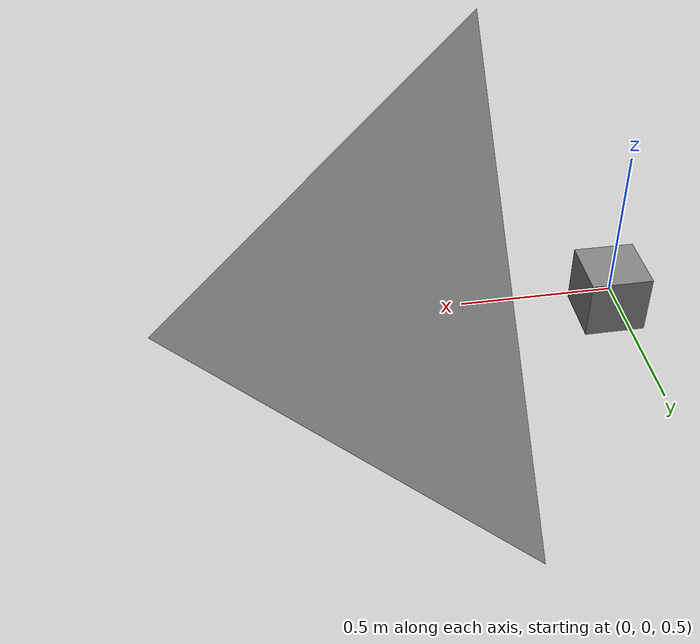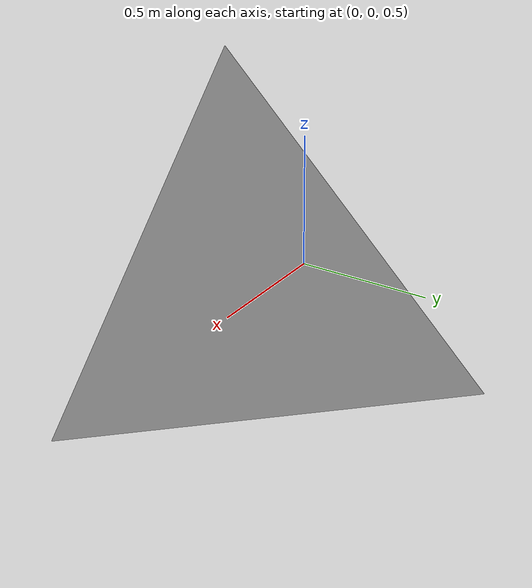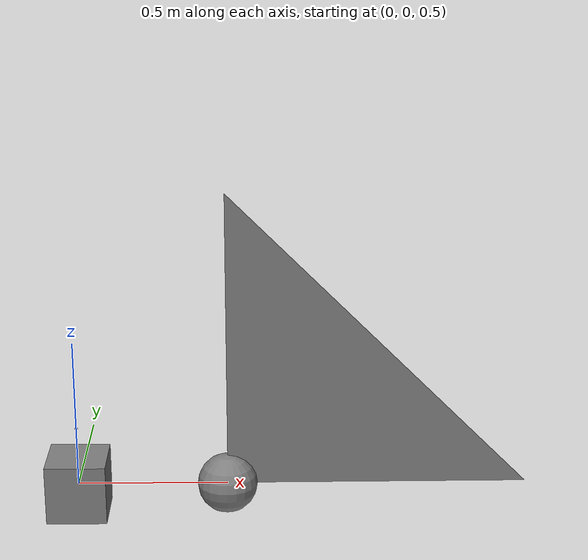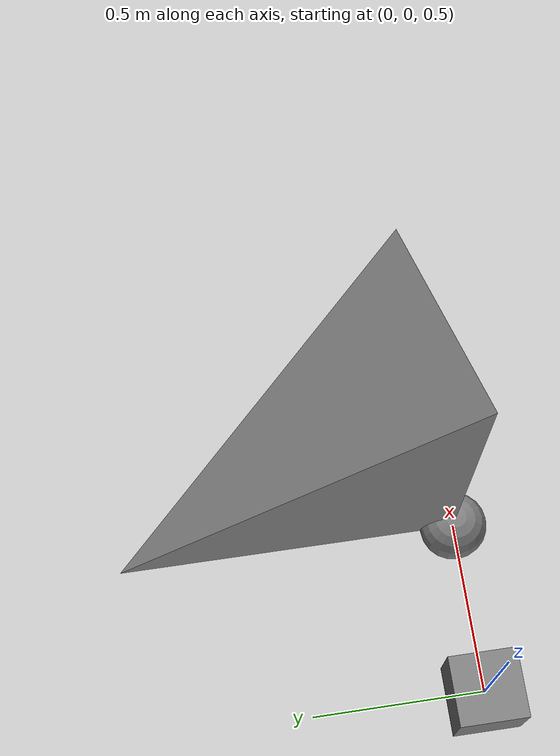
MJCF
<mujoco model="exotic_sensors">
  <asset>
    <mesh name="tetra" vertex="0 0 0  1 0 0  0 1 0  0 0 1"/>
  </asset>
  <worldbody>
    <body name="b1" pos="0 0 0.5">
      <freejoint/>
      <geom name="g1" type="box" size="0.1 0.1 0.1"/>
      <site name="s1" pos="0 0 0.2"/>
      <camera name="cam1" pos="0 0 0.3" resolution="4 4"/>
    </body>
    <body name="b2" pos="0.5 0 0.5">
      <freejoint/>
      <geom name="g2" type="sphere" size="0.1"/>
      <geom name="gmesh" type="mesh" mesh="tetra"/>
    </body>
  </worldbody>
  <sensor>
    <rangefinder name="rf_site" site="s1"/>
    <rangefinder name="rf_data" site="s1" data="dist normal" cutoff="5"/>
    <rangefinder name="rf_cam" camera="cam1"/>
    <contact name="ct_min" geom1="g1" geom2="g2" data="found force" num="3" reduce="mindist"/>
    <contact name="ct_sub" subtree1="b1" subtree2="b2" reduce="netforce"/>
    <contact name="ct_site" site="s1"/>
    <tactile name="tc1" geom="gmesh" mesh="tetra"/>
    <user name="us1" objtype="site" objname="s1" datatype="real" needstage="vel" dim="1" cutoff="2" noise="0.1"/>
    <user name="us_axis" objtype="body" objname="b1" datatype="axis" needstage="acc" dim="3"/>
  </sensor>
</mujoco>
